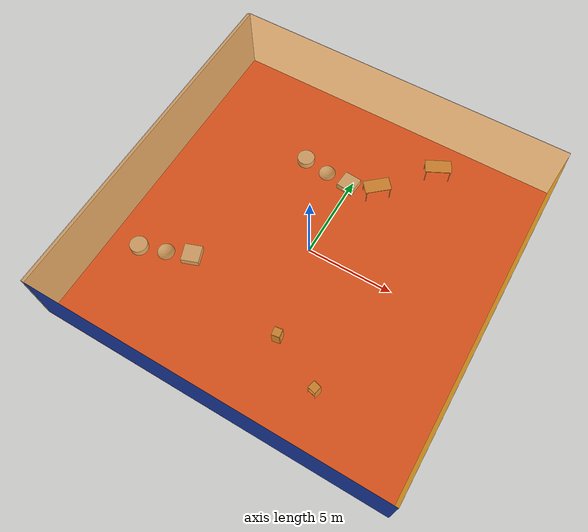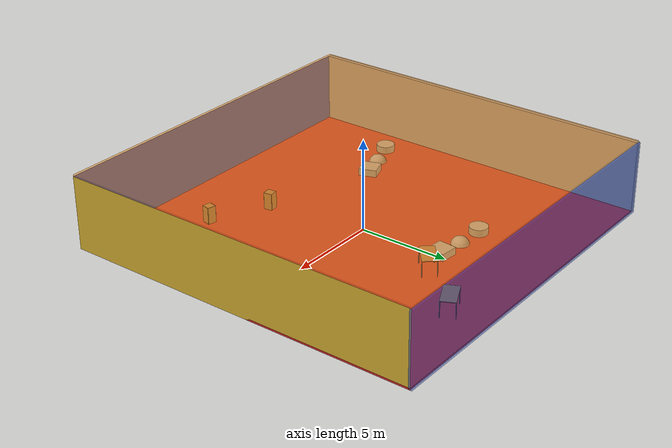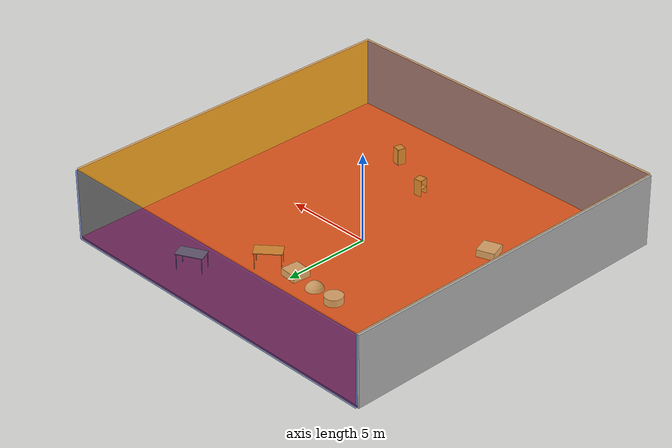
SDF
<sdf version="1.4">
 <world name="default">
  <physics type="ode">
   <max_step_size>0.001</max_step_size>
   <real_time_factor>1</real_time_factor>
   <real_time_update_rate>1000</real_time_update_rate>
   <gravity>0 0 -9.8</gravity>
  </physics>
  <scene><ambient>0.4 0.4 0.4 1</ambient><background>0.7 0.7 0.7 1</background><shadows>1</shadows></scene>
  <model name="Surrounding">
   <static>1</static>
   <link name="Ceiling">
    <collision name="Ceiling_Collision"><geometry><box><size>20 20 0.1</size></box></geometry></collision>
    <visual name="Ceiling_Visual">
     <geometry><box><size>20 20 0.1</size></box></geometry>
     <material>
      <script>
       <uri>file://media/materials/scripts/gazebo.material</uri>
       <name>Gazebo/OrangeTransparent</name>
      </script>
     </material>
    </visual>
    <pose>0 0 4.05 0 0 0</pose>
   </link>
   <link name="Wall_South">
    <collision name="Wall_South_Collision">
     <geometry><box><size>20 0 4</size></box></geometry>
     <pose>0 0 2 0 -0 0</pose>
    </collision>
    <visual name="Wall_South_Visual">
     <pose>0 0 2 0 -0 0</pose>
     <geometry><box><size>20 0 4</size></box></geometry>
     <material>
      <script><uri>file://media/materials/scripts/gazebo.material</uri><name>Gazebo/BlueGlow</name></script>
     </material>
    </visual>
    <velocity_decay><linear>0</linear><angular>0</angular></velocity_decay>
    <pose>0 -10 0 0 -0 0</pose>
   </link>
   <link name="Wall_East">
    <collision name="Wall_21_Collision">
     <geometry><box><size>20 0 4</size></box></geometry>
     <pose>0 0 2 0 -0 0</pose>
    </collision>
    <visual name="Wall_21_Visual">
     <pose>0 0 2 0 -0 0</pose>
     <geometry><box><size>20 0 4</size></box></geometry>
     <material>
      <script><uri>file://media/materials/scripts/gazebo.material</uri><name>Gazebo/Gold</name></script>
     </material>
    </visual>
    <velocity_decay><linear>0</linear><angular>0</angular></velocity_decay>
    <pose>10 0 0 0 -0 1.5708</pose>
   </link>
   <link name="Wall_North">
    <collision name="Wall_22_Collision">
     <geometry><box><size>20 0.2 4</size></box></geometry>
     <pose>0 0 2 0 -0 0</pose>
    </collision>
    <visual name="Wall_22_Visual">
     <pose>0 0 2 0 -0 0</pose>
     <geometry><box><size>20 0.2 4</size></box></geometry>
     <material>
      <script><uri>file://media/materials/scripts/gazebo.material</uri><name>Gazebo/BlueTransparent</name></script>
     </material>
    </visual>
    <velocity_decay><linear>0</linear><angular>0</angular></velocity_decay>
    <pose>0 10 0 0 -0 0</pose>
   </link>
   <link name="Wall_West">
    <collision name="Wall_23_Collision">
     <geometry><box><size>20 0.2 4</size></box></geometry>
     <pose>0 0 2 0 -0 0</pose>
    </collision>
    <visual name="Wall_23_Visual">
     <pose>0 0 2 0 -0 0</pose>
     <geometry><box><size>20 0.2 4</size></box></geometry>
     <material>
      <script><uri>file://media/materials/scripts/gazebo.material</uri><name>Gazebo/Pioneer2Body</name></script>
     </material>
    </visual>
    <velocity_decay><linear>0</linear><angular>0</angular></velocity_decay>
    <pose>-10 0 0 0 0 -1.5708</pose>
   </link>
   <link name="Ground_link">
    <collision name="collision">
     <pose>0 0 .05 0 -0 0</pose>
     <geometry><box><size>20 20 0.1</size></box></geometry>
    </collision>
    <visual name="visual">
     <pose>0 0 .05 0 -0 0</pose>
     <geometry><box><size>20 20 0.1</size></box></geometry>
     <material>
      <script><uri>file://media/materials/scripts/gazebo.material</uri><name>Gazebo/Red</name></script>
     </material>
    </visual>
   </link>
   <static>1</static>
  </model>
  <spherical_coordinates>
   <surface_model>EARTH_WGS84</surface_model>
   <latitude_deg>0</latitude_deg>
   <longitude_deg>0</longitude_deg>
   <elevation>0</elevation>
   <heading_deg>0</heading_deg>
  </spherical_coordinates>
  <light name="lightball_0" type="diffuse">
   <diffuse>0.8 0.8 0.8 1</diffuse>
   <specular>0.2 0.2 0.2 1</specular>
   <attenuation>
    <range>100</range>
    <constant>0.7</constant>
    <linear>0.01</linear>
    <quadratic>0.001</quadratic>
   </attenuation>
   <direction>-0.5 0.1 -0.9</direction>
   <pose>-3.58390242445 -0.478359356706 1.28345847878 0 0 0</pose>
  </light>
  <light name="lightball_1" type="diffuse">
   <diffuse>0.8 0.8 0.8 1</diffuse>
   <specular>0.2 0.2 0.2 1</specular>
   <attenuation>
    <range>100</range>
    <constant>0.7</constant>
    <linear>0.01</linear>
    <quadratic>0.001</quadratic>
   </attenuation>
   <direction>-0.5 0.1 -0.9</direction>
   <pose>7.60217654722 6.53688034723 1.8255813671 0 0 0</pose>
  </light>
  <light name="lightball_2" type="diffuse">
   <diffuse>0.8 0.8 0.8 1</diffuse>
   <specular>0.2 0.2 0.2 1</specular>
   <attenuation>
    <range>100</range>
    <constant>0.7</constant>
    <linear>0.01</linear>
    <quadratic>0.001</quadratic>
   </attenuation>
   <direction>-0.5 0.1 -0.9</direction>
   <pose>0.486526743099 -3.66483877565 1.58536458213 0 0 0</pose>
  </light>
  <light name="lightball_3" type="diffuse">
   <diffuse>0.8 0.8 0.8 1</diffuse>
   <specular>0.2 0.2 0.2 1</specular>
   <attenuation>
    <range>100</range>
    <constant>0.7</constant>
    <linear>0.01</linear>
    <quadratic>0.001</quadratic>
   </attenuation>
   <direction>-0.5 0.1 -0.9</direction>
   <pose>8.70947324238 -1.93480544771 2.92543933518 0 0 0</pose>
  </light>
  <include>
   <uri>model://textured_shapes</uri>
   <pose>-6.75185016876 -4.06535107515 0 0 0 1.91339456154</pose>
  </include>
  <include>
   <uri>model://textured_shapes</uri>
   <pose>-1.61701828501 4.82782542654 0 0 0 1.48808758335</pose>
  </include>
  <include><uri>model://cabinet</uri><pose>1.1324654268 -5.2238658429 0 0 0 0.148076794887</pose></include>
  <include><uri>model://table</uri><pose>1.48346127548 5.02414426958 0 0 0 0.71133342316</pose></include>
  <include><uri>model://cabinet</uri><pose>4.16510583541 -6.70894890951 0 0 0 1.33827960363</pose></include>
  <include><uri>model://table</uri><pose>3.92207908588 7.90348131859 0 0 0 0.461139329308</pose></include>
 </world>
</sdf>

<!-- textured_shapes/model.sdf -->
<sdf version="1.6">
  <model name="textured_shapes">
    <pose>0 0 0.5 0 0 0</pose>
    <link name="box">
      <pose>0 -1.5 0 0 0 0</pose>
      <collision name="collision">
        <geometry>
          <box>
            <size>1 1 1</size>
          </box>
        </geometry>
      </collision>
      <visual name="visual">
        <geometry>
          <box>
            <size>1 1 1</size>
          </box>
        </geometry>
        <material>
          <script>
            <uri>model://../model_source/models/textured_shapes/materials/scripts</uri>
            <uri>model://../model_source/models/textured_shapes/materials/textures</uri>
            <name>TexturedShape/Squares</name>
          </script>
        </material>
      </visual>
    </link>
    <link name="sphere">
      <collision name="collision">
        <geometry>
          <sphere>
            <radius>0.5</radius>
          </sphere>
        </geometry>
      </collision>
      <visual name="visual">
        <geometry>
          <sphere>
            <radius>0.5</radius>
          </sphere>
        </geometry>
        <material>
          <script>
            <uri>model://../model_source/models/textured_shapes/materials/scripts</uri>
            <uri>model://../model_source/models/textured_shapes/materials/textures</uri>
            <name>TexturedShape/Squares</name>
          </script>
        </material>
      </visual>
    </link>
    <link name="cylinder">
      <pose>0 1.5 0 0 0 0</pose>
      <collision name="collision">
        <geometry>
          <cylinder>
            <radius>0.5</radius>
            <length>1</length>
          </cylinder>
        </geometry>
      </collision>
      <visual name="visual">
        <geometry>
          <cylinder>
            <radius>0.5</radius>
            <length>1</length>
          </cylinder>
        </geometry>
        <material>
          <script>
            <uri>model://../model_source/models/textured_shapes/materials/scripts</uri>
            <uri>model://../model_source/models/textured_shapes/materials/textures</uri>
            <name>TexturedShape/Squares</name>
          </script>
        </material>
      </visual>
    </link>
  </model>
</sdf>

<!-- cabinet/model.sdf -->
<sdf version="1.5">
  <model name="cabinet">
    <static>true</static>
    <link name="cabinet_bottom_plate">
      <inertial>
        <pose>0 0 -1 0 0 0</pose>
        <inertia>
          <ixx>2.050000</ixx>
          <ixy>0</ixy>
          <ixz>0</ixz>
          <iyy>2.050000</iyy>
          <iyz>0</iyz>
          <izz>2.050000</izz>
        </inertia>
        <mass>25.000000</mass>
      </inertial>
      <collision name="cabinet_bottom_plate_geom">
        <pose>0 0 0.010000 0 0 0</pose>
        <geometry>
          <box>
            <size>0.450000 0.450000 0.020000</size>
          </box>
        </geometry>
      </collision>
      <visual name="cabinet_bottom_plate_geom_visual">
        <pose>0 0 0.010000 0 0 0</pose>
        <geometry>
          <box>
            <size>0.450000 0.450000 0.020000</size>
          </box>
        </geometry>
        <material>
          <script>
            <uri>model://media/materials/scripts/gazebo.material</uri>
            <name>Gazebo/Wood</name>
          </script>
        </material>
      </visual>
      <collision name="cabinet_bottom_plate_geom_cabinet_back_plate">
        <pose>0.235000 0 0.510000 0 0 0</pose>
        <geometry>
          <box>
            <size>0.020000 0.450000 1.020000</size>
          </box>
        </geometry>
      </collision>
      <visual name="cabinet_bottom_plate_geom_cabinet_back_plate_visual">
        <pose>0.235000 0 0.510000 0 0 0</pose>
        <geometry>
          <box>
            <size>0.020000 0.450000 1.020000</size>
          </box>
        </geometry>
        <material>
          <script>
            <uri>model://media/materials/scripts/gazebo.material</uri>
            <name>Gazebo/Wood</name>
          </script>
        </material>
      </visual>
      <collision name="cabinet_bottom_plate_geom_cabinet_left_plate">
        <pose>0 0.235000 0.510000 0 0 0</pose>
        <geometry>
          <box>
            <size>0.450000 0.020000 1.020000</size>
          </box>
        </geometry>
      </collision>
      <visual name="cabinet_bottom_plate_geom_cabinet_left_plate_visual">
        <pose>0 0.235000 0.510000 0 0 0</pose>
        <geometry>
          <box>
            <size>0.450000 0.020000 1.020000</size>
          </box>
        </geometry>
        <material>
          <script>
            <uri>model://media/materials/scripts/gazebo.material</uri>
            <name>Gazebo/Wood</name>
          </script>
        </material>
      </visual>
      <collision name="cabinet_bottom_plate_geom_cabinet_middle_plate">
        <pose>0 0 0.510000 0 0 0</pose>
        <geometry>
          <box>
            <size>0.450000 0.450000 0.020000</size>
          </box>
        </geometry>
      </collision>
      <visual name="cabinet_bottom_plate_geom_cabinet_middle_plate_visual">
        <pose>0 0 0.510000 0 0 0</pose>
        <geometry>
          <box>
            <size>0.450000 0.450000 0.020000</size>
          </box>
        </geometry>
        <material>
          <script>
            <uri>model://media/materials/scripts/gazebo.material</uri>
            <name>Gazebo/Wood</name>
          </script>
        </material>
      </visual>
      <collision name="cabinet_bottom_plate_geom_cabinet_right_plate">
        <pose>0 -0.235000 0.510000 0 0 0</pose>
        <geometry>
          <box>
            <size>0.450000 0.020000 1.020000</size>
          </box>
        </geometry>
      </collision>
      <visual name="cabinet_bottom_plate_geom_cabinet_right_plate_visual">
        <pose>0 -0.235000 0.510000 0 0 0</pose>
        <geometry>
          <box>
            <size>0.450000 0.020000 1.020000</size>
          </box>
        </geometry>
        <material>
          <script>
            <uri>model://media/materials/scripts/gazebo.material</uri>
            <name>Gazebo/Wood</name>
          </script>
        </material>
      </visual>
      <collision name="cabinet_bottom_plate_geom_cabinet_top_plate">
        <pose>0 0 1.010000 0 0 0</pose>
        <geometry>
          <box>
            <size>0.450000 0.450000 0.020000</size>
          </box>
        </geometry>
      </collision>
      <visual name="cabinet_bottom_plate_geom_cabinet_top_plate_visual">
        <pose>0 0 1.010000 0 0 0</pose>
        <geometry>
          <box>
            <size>0.450000 0.450000 0.020000</size>
          </box>
        </geometry>
        <material>
          <script>
            <uri>model://media/materials/scripts/gazebo.material</uri>
            <name>Gazebo/Wood</name>
          </script>
        </material>
      </visual>
    </link>
  </model>
</sdf>

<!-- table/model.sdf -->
<sdf version="1.5">
  <model name="table">
    <static>true</static>
    <link name="link">
      <collision name="surface">
        <pose>0 0 1.0 0 0 0</pose>
        <geometry>
          <box>
            <size>1.5 0.8 0.03</size>
          </box>
        </geometry>
        <surface>
          <friction>
            <ode>
              <mu>0.6</mu>
              <mu2>0.6</mu2>
            </ode>
          </friction>
        </surface>
      </collision>
      <visual name="visual1">
        <pose>0 0 1.0 0 0 0</pose>
        <geometry>
          <box>
            <size>1.5 0.8 0.03</size>
          </box>
        </geometry>
        <material>
          <script>
            <uri>model://media/materials/scripts/gazebo.material</uri>
            <name>Gazebo/Wood</name>
          </script>
        </material>
      </visual>
      <collision name="front_left_leg">
        <pose>0.68 0.38 0.5 0 0 0</pose>
        <geometry>
          <cylinder>
            <radius>0.02</radius>
            <length>1.0</length>
          </cylinder>
        </geometry>
      </collision>
      <visual name="front_left_leg">
        <pose>0.68 0.38 0.5 0 0 0</pose>
        <geometry>
          <cylinder>
            <radius>0.02</radius>
            <length>1.0</length>
          </cylinder>
        </geometry>
        <material>
          <script>
            <uri>model://media/materials/scripts/gazebo.material</uri>
            <name>Gazebo/Grey</name>
          </script>
        </material>
      </visual>
      <collision name="front_right_leg">
        <pose>0.68 -0.38 0.5 0 0 0</pose>
        <geometry>
          <cylinder>
            <radius>0.02</radius>
            <length>1.0</length>
          </cylinder>
        </geometry>
      </collision>
      <visual name="front_right_leg">
        <pose>0.68 -0.38 0.5 0 0 0</pose>
        <geometry>
          <cylinder>
            <radius>0.02</radius>
            <length>1.0</length>
          </cylinder>
        </geometry>
        <material>
          <script>
            <uri>model://media/materials/scripts/gazebo.material</uri>
            <name>Gazebo/Grey</name>
          </script>
        </material>
      </visual>
      <collision name="back_right_leg">
        <pose>-0.68 -0.38 0.5 0 0 0</pose>
        <geometry>
          <cylinder>
            <radius>0.02</radius>
            <length>1.0</length>
          </cylinder>
        </geometry>
      </collision>
      <visual name="back_right_leg">
        <pose>-0.68 -0.38 0.5 0 0 0</pose>
        <geometry>
          <cylinder>
            <radius>0.02</radius>
            <length>1.0</length>
          </cylinder>
        </geometry>
        <material>
          <script>
            <uri>model://media/materials/scripts/gazebo.material</uri>
            <name>Gazebo/Grey</name>
          </script>
        </material>
      </visual>
      <collision name="back_left_leg">
        <pose>-0.68 0.38 0.5 0 0 0</pose>
        <geometry>
          <cylinder>
            <radius>0.02</radius>
            <length>1.0</length>
          </cylinder>
        </geometry>
      </collision>
      <visual name="back_left_leg">
        <pose>-0.68 0.38 0.5 0 0 0</pose>
        <geometry>
          <cylinder>
            <radius>0.02</radius>
            <length>1.0</length>
          </cylinder>
        </geometry>
        <material>
          <script>
            <uri>model://media/materials/scripts/gazebo.material</uri>
            <name>Gazebo/Grey</name>
          </script>
        </material>
      </visual>
    </link>
  </model>
</sdf>
